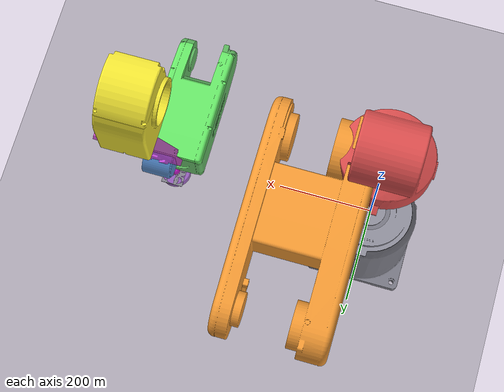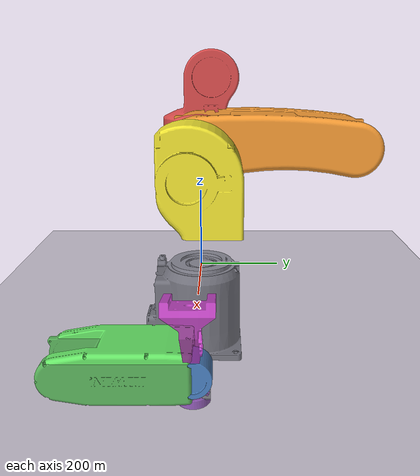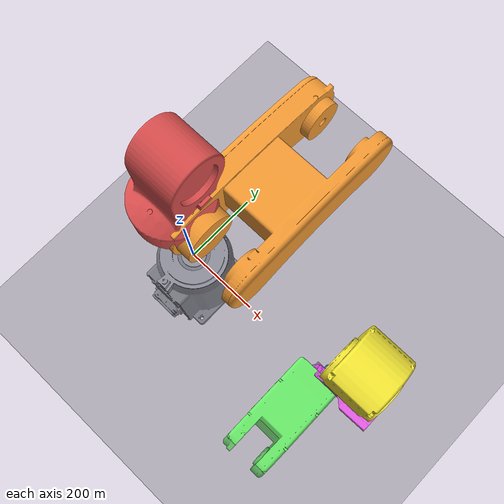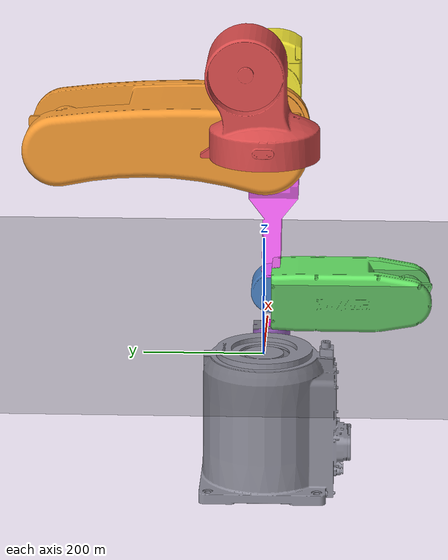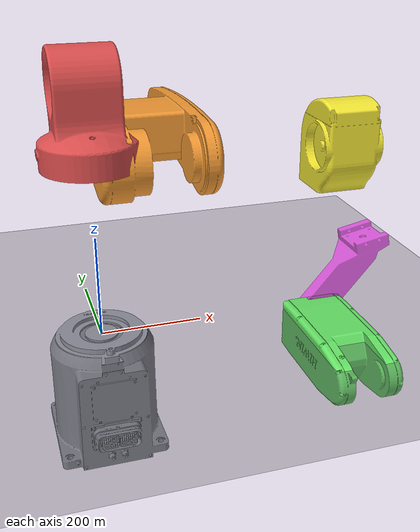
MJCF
<mujoco model="RT605-710-GB_full">
  <!-- 完整版本:DH 骨架(已驗證) + 真實連桿 STL 碰撞網格
       假設:每個零件的局部設計原點,恰好落在該零件對應的 DH 關節軸線上
       (Link1 已用 bounding box 對稱性驗證過這個假設成立;其餘連桿的假設
       正確性,要靠這份檔案 render 出來後肉眼檢查外形是否合理連續)
       單位:長度 mm -->
  <compiler angle="degree" meshdir="meshes/"/>
  <visual>
    <global offwidth="960" offheight="720"/>
  </visual>

  <default>
    <joint damping="1" frictionloss="0.5"/>
    <geom rgba="0.8 0.8 0.82 1" contype="1" conaffinity="1"/>
  </default>

  <asset>
    <mesh name="mesh_base"  file="RT605-001.stl"/>
    <mesh name="mesh_link1" file="RT605-002.stl"/>
    <mesh name="mesh_link2" file="RT605-003.stl"/>
    <mesh name="mesh_link3" file="RT605-004.stl"/>
    <mesh name="mesh_link4" file="RT605-005.stl"/>
    <mesh name="mesh_link5" file="RT605-006.stl"/>
    <mesh name="mesh_link6" file="RT605-007.stl"/>
    <mesh name="mesh_ee_main"  file="end_effector_main.stl"/>
  </asset>

  <worldbody>
    <light pos="0 0 1500" dir="0 0 -1"/>
    <camera name="viewcam" pos="1400 -1400 900" xyaxes="0.707 0.707 0 -0.35 0.35 0.87"/>
    <geom name="floor" type="plane" size="1000 1000 10" rgba="0.3 0.3 0.32 1" contype="0" conaffinity="0"/>

    <body name="base" pos="0 0 0">
      <geom name="geom_base" type="mesh" mesh="mesh_base" rgba="0.55 0.55 0.6 1"/>

      <body name="link1" pos="0.000 0.000 338.000" quat="1.0000 0.0000 0.0000 0.0000">
        <joint name="J1" type="hinge" axis="0 0 1" range="-165 165" ref="0"/>
        <geom name="geom_link1" type="mesh" mesh="mesh_link1" rgba="0.85 0.3 0.3 0.9"/>

        <body name="link2" pos="67.000 0.000 0.000" quat="0.7071 -0.7071 0.0000 0.0000">
          <joint name="J2" type="hinge" axis="0 0 1" range="-125 85" ref="0"/>
        <!-- 注意:此關節不使用 ref 做 -90 偏移,呼叫端須自行換算:
             qpos_J2 = controller_J2_degrees - 90,再轉成弧度餵進來 -->
          <geom name="geom_link2" type="mesh" mesh="mesh_link2" rgba="0.95 0.6 0.2 0.9"/>

          <body name="link3" pos="375.000 0.000 0.000" quat="1.0000 0.0000 0.0000 0.0000">
            <joint name="J3" type="hinge" axis="0 0 1" range="-55 185" ref="0"/>
            <geom name="geom_link3" type="mesh" mesh="mesh_link3" rgba="0.95 0.9 0.2 0.9"/>

            <body name="link4" pos="0.000 375.000 0.000" quat="0.7071 -0.7071 0.0000 0.0000">
              <joint name="J4" type="hinge" axis="0 0 1" range="-190 190" ref="0"/>
              <geom name="geom_link4" type="mesh" mesh="mesh_link4" rgba="0.4 0.9 0.4 0.9"/>

              <body name="link5" pos="0.000 0.000 0.000" quat="0.7071 0.7071 0.0000 0.0000">
                <joint name="J5" type="hinge" axis="0 0 1" range="-115 115" ref="0"/>
                <geom name="geom_link5" type="mesh" mesh="mesh_link5" rgba="0.3 0.6 0.95 0.9"/>

                <body name="link6" pos="0.000 60.000 0.000" quat="0.7071 -0.7071 0.0000 0.0000">
                  <joint name="J6" type="hinge" axis="0 0 1" range="-360 360" ref="0"/>
                  <geom name="geom_link6" type="mesh" mesh="mesh_link6" rgba="0.7 0.4 0.9 0.9"/>
                  <site name="flange" pos="0 0 0" size="10" rgba="1 0 1 1"/>
                  <!-- 連接板:用實測的連接面覆蓋範圍(48x66mm)做成實心平板,
                       取代還沒量到的四孔精確座標;平板從 J6 (z=0) 延伸到
                       末端安裝面 (z=2),兩邊相切,不留空隙也不重疊 -->
                  <geom name="mount_plate" type="box" size="24 33 1" pos="0 0 1"
                        rgba="0.6 0.6 0.65 1"/>
                  <!-- 新末端:用「頂部連接板法向量對齊 J6 局部 +Z、留 2mm 間隙貼合」的近似對齊方式掛上,
                       等孔位精確座標量出來後,這裡的角度/位置要重新微調精修 -->
                  <geom name="ee_main" type="mesh" mesh="mesh_ee_main" rgba="0.9 0.3 0.9 0.85"/>
                </body>
              </body>
            </body>
          </body>
        </body>
      </body>
    </body>
  </worldbody>

  <contact>
    <exclude body1="base"  body2="link1"/>
    <exclude body1="link1" body2="link2"/>
    <exclude body1="link2" body2="link3"/>
    <exclude body1="link3" body2="link4"/>
    <exclude body1="link4" body2="link5"/>
    <exclude body1="link5" body2="link6"/>
  </contact>

  <!-- 註:ee_main / ee_small 的 geom 定義在 link6 body 內部,同一個 body 底下的 geom
       彼此之間不會互相檢查碰撞(MuJoCo 預設同 body 內部自動略過),不需額外 exclude -->
  <keyframe>
    <!-- key 0:DH 零位(手臂完全伸直),flange 應落在 (502,0,713)
         J2 弧度 -1.5708 對應控制器角度 0(物理角度 -90) -->
    <key name="dh_zero" qpos="0 -1.5708 0 0 0 0"/>
  </keyframe>
</mujoco>
